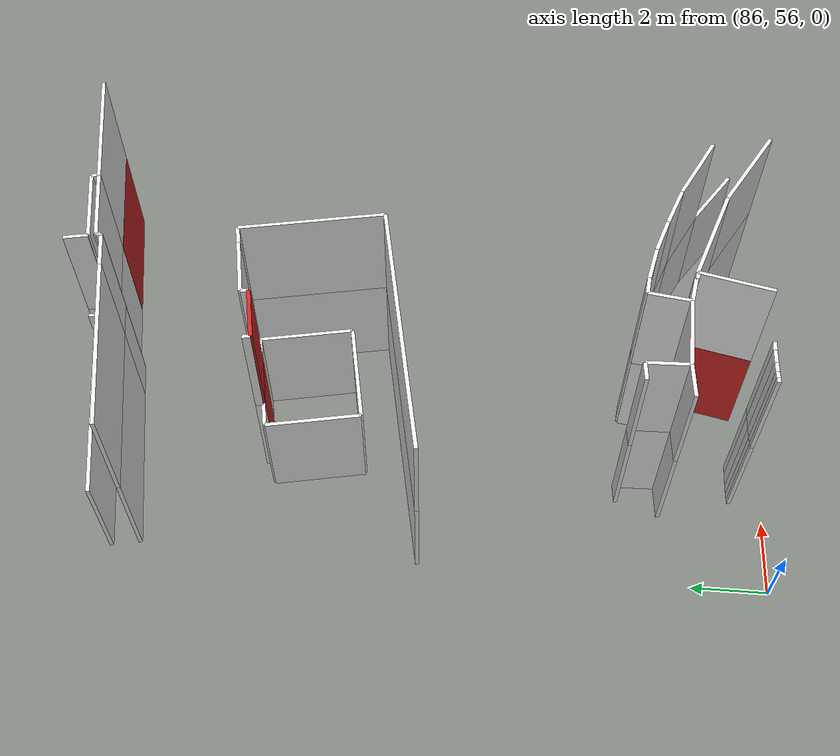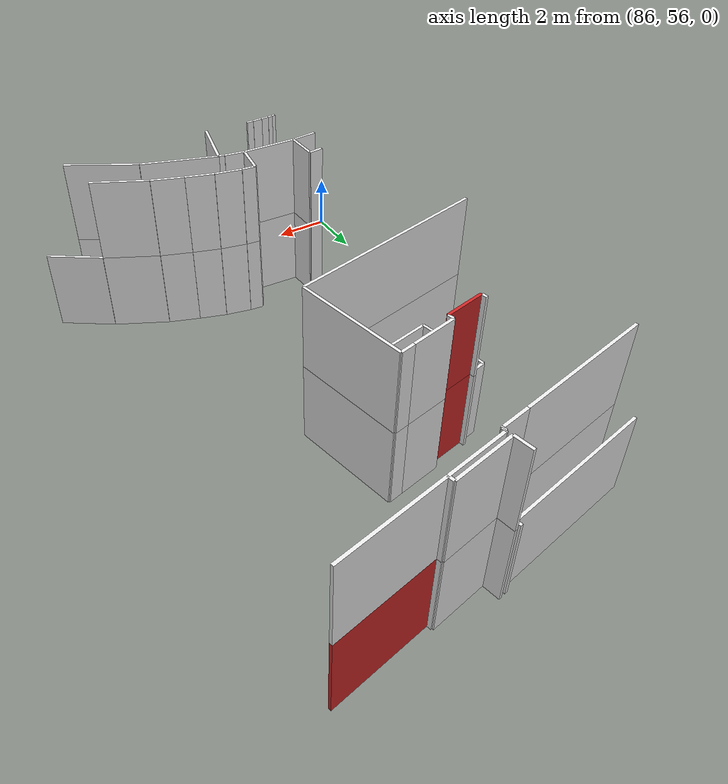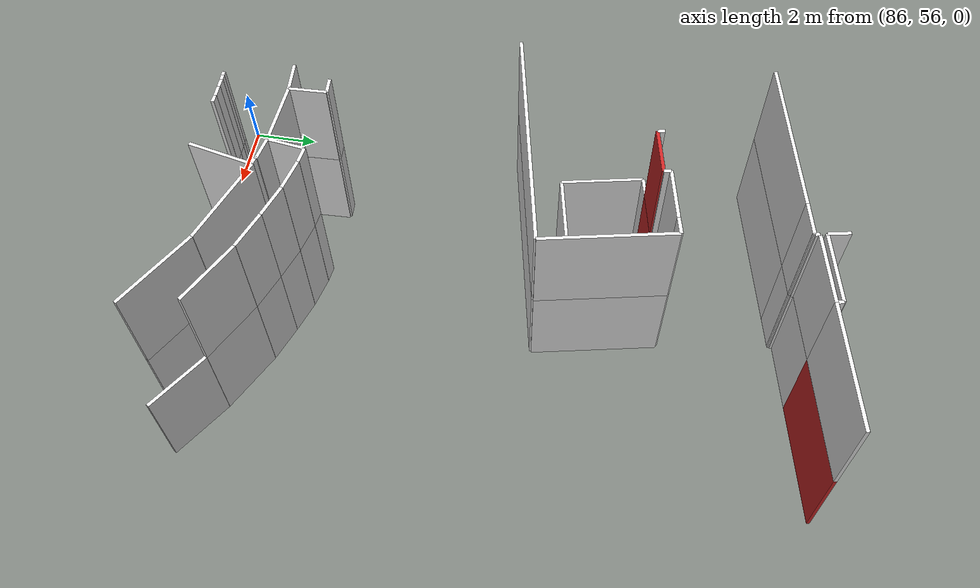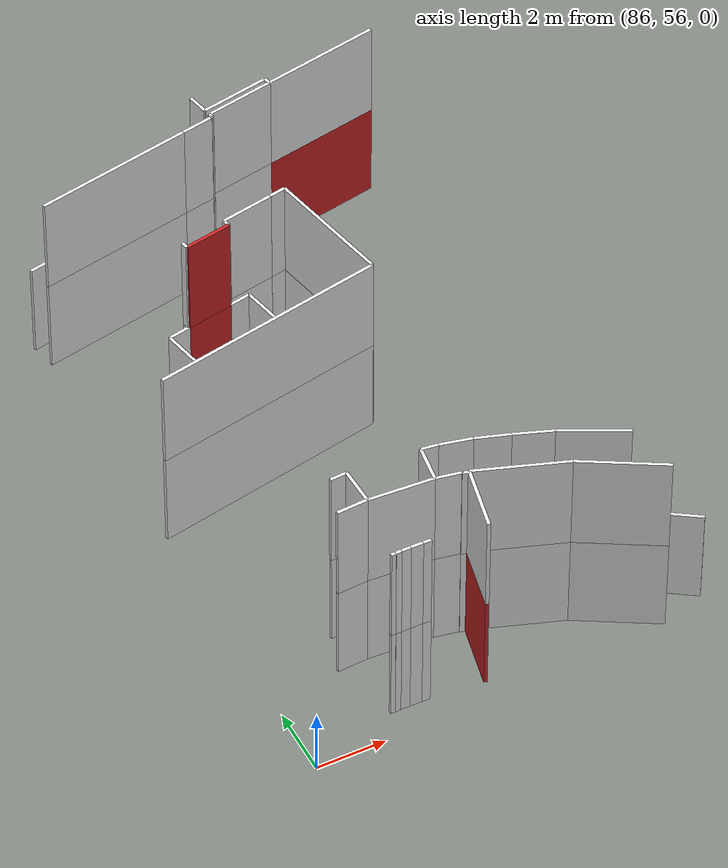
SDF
<sdf version="1.6">
 <world name="default">
  <model name="wall_91.5_57.6_1.5">
   <static>true</static>
   <pose>91.49500000002445 57.58999999985099 1.5 0 0 -1.795651920405678</pose>
   <link name="link">
    <visual name="visual">
     <geometry><box><size>1.9285486770039746 0.1 3</size></box></geometry>
     <material>
      <script><uri>file://media/materials/scripts/gazebo.material</uri><name>Gazebo/Red</name></script>
     </material>
    </visual>
    <collision name="collision"><geometry><box><size>1.9285486770039746 0.1 3</size></box></geometry></collision>
   </link>
  </model>
  <model name="wall_89.6_69.5_1.5">
   <static>true</static>
   <pose>89.59500000000116 69.4749999998603 1.5 0 0 0.19458657847950467</pose>
   <link name="link">
    <visual name="visual">
     <geometry><box><size>1.396352391109346 0.1 3</size></box></geometry>
     <material>
      <script><uri>file://media/materials/scripts/gazebo.material</uri><name>Gazebo/Red</name></script>
     </material>
    </visual>
    <collision name="collision"><geometry><box><size>1.396352391109346 0.1 3</size></box></geometry></collision>
   </link>
  </model>
  <model name="wall_95.5_74.5_1.5">
   <static>true</static>
   <pose>95.51500000001397 74.51000000000931 1.5 0 0 0.19351316121262999</pose>
   <link name="link">
    <visual name="visual">
     <geometry><box><size>3.5360005656156344 0.1 3</size></box></geometry>
     <material>
      <script><uri>file://media/materials/scripts/gazebo.material</uri><name>Gazebo/Red</name></script>
     </material>
    </visual>
    <collision name="collision"><geometry><box><size>3.5360005656156344 0.1 3</size></box></geometry></collision>
   </link>
  </model>
  <model name="wall_89.6_69.5_4.5">
   <static>true</static>
   <pose>89.59500000000116 69.4749999998603 4.5 0 0 0.19458657847950467</pose>
   <link name="link">
    <visual name="visual">
     <geometry><box><size>1.396352391109346 0.1 3</size></box></geometry>
     <material>
      <script><uri>file://media/materials/scripts/gazebo.material</uri><name>Gazebo/Red</name></script>
     </material>
    </visual>
    <collision name="collision"><geometry><box><size>1.396352391109346 0.1 3</size></box></geometry></collision>
   </link>
  </model>
  <model name="wall_91.6_58.6_1.5">
   <static>true</static>
   <pose>91.61000000001513 58.55499999993481 1.5 0 0 2.896613989161817</pose>
   <link name="link">
    <visual name="visual">
     <geometry><box><size>0.20615528135994066 0.1 3</size></box></geometry>
     <material>
      <script><uri>file://media/materials/scripts/gazebo.material</uri><name>Gazebo/White</name></script>
     </material>
    </visual>
    <collision name="collision"><geometry><box><size>0.20615528135994066 0.1 3</size></box></geometry></collision>
   </link>
  </model>
  <model name="wall_91.5_58.6_1.5">
   <static>true</static>
   <pose>91.51500000001397 58.59000000008382 1.5 0 0 1.1071487177940904</pose>
   <link name="link">
    <visual name="visual">
     <geometry><box><size>0.022360679795822902 0.1 3</size></box></geometry>
     <material>
      <script><uri>file://media/materials/scripts/gazebo.material</uri><name>Gazebo/White</name></script>
     </material>
    </visual>
    <collision name="collision">
     <geometry><box><size>0.022360679795822902 0.1 3</size></box></geometry>
    </collision>
   </link>
  </model>
  <model name="wall_91.2_58.7_1.5">
   <static>true</static>
   <pose>91.16500000000815 58.66500000003725 1.5 0 0 2.960499997216104</pose>
   <link name="link">
    <visual name="visual">
     <geometry><box><size>0.7218032973052274 0.1 3</size></box></geometry>
     <material>
      <script><uri>file://media/materials/scripts/gazebo.material</uri><name>Gazebo/White</name></script>
     </material>
    </visual>
    <collision name="collision"><geometry><box><size>0.7218032973052274 0.1 3</size></box></geometry></collision>
   </link>
  </model>
  <model name="wall_89.9_58.8_1.5">
   <static>true</static>
   <pose>89.85999999998603 58.78499999991618 1.5 0 0 3.083762470913302</pose>
   <link name="link">
    <visual name="visual">
     <geometry><box><size>1.90318154679468 0.1 3</size></box></geometry>
     <material>
      <script><uri>file://media/materials/scripts/gazebo.material</uri><name>Gazebo/White</name></script>
     </material>
    </visual>
    <collision name="collision"><geometry><box><size>1.90318154679468 0.1 3</size></box></geometry></collision>
   </link>
  </model>
  <model name="wall_88.5_58.8_1.5">
   <static>true</static>
   <pose>88.45999999999185 58.80999999982305 1.5 0 0 -3.0750244897495804</pose>
   <link name="link">
    <visual name="visual">
     <geometry><box><size>0.9019977826712443 0.1 3</size></box></geometry>
     <material>
      <script><uri>file://media/materials/scripts/gazebo.material</uri><name>Gazebo/White</name></script>
     </material>
    </visual>
    <collision name="collision"><geometry><box><size>0.9019977826712443 0.1 3</size></box></geometry></collision>
   </link>
  </model>
  <model name="wall_88.6_56.8_1.5">
   <static>true</static>
   <pose>88.625 56.83999999985099 1.5 0 0 0.0</pose>
   <link name="link">
    <visual name="visual">
     <geometry><box><size>0.1300000000046566 0.1 3</size></box></geometry>
     <material>
      <script><uri>file://media/materials/scripts/gazebo.material</uri><name>Gazebo/White</name></script>
     </material>
    </visual>
    <collision name="collision"><geometry><box><size>0.1300000000046566 0.1 3</size></box></geometry></collision>
   </link>
  </model>
  <model name="wall_88.8_56.8_1.5">
   <static>true</static>
   <pose>88.77499999999418 56.84499999997206 1.5 0 0 0.0587558241408068</pose>
   <link name="link">
    <visual name="visual">
     <geometry><box><size>0.17029386365721316 0.1 3</size></box></geometry>
     <material>
      <script><uri>file://media/materials/scripts/gazebo.material</uri><name>Gazebo/White</name></script>
     </material>
    </visual>
    <collision name="collision"><geometry><box><size>0.17029386365721316 0.1 3</size></box></geometry></collision>
   </link>
  </model>
  <model name="wall_89.0_56.9_1.5">
   <static>true</static>
   <pose>88.99499999999534 56.85000000009313 1.5 0 0 0.0</pose>
   <link name="link">
    <visual name="visual">
     <geometry><box><size>0.27000000001862645 0.1 3</size></box></geometry>
     <material>
      <script><uri>file://media/materials/scripts/gazebo.material</uri><name>Gazebo/White</name></script>
     </material>
    </visual>
    <collision name="collision"><geometry><box><size>0.27000000001862645 0.1 3</size></box></geometry></collision>
   </link>
  </model>
  <model name="wall_89.3_56.9_1.5">
   <static>true</static>
   <pose>89.30499999999302 56.85000000009313 1.5 0 0 0.0</pose>
   <link name="link">
    <visual name="visual">
     <geometry><box><size>0.34999999997671694 0.1 3</size></box></geometry>
     <material>
      <script><uri>file://media/materials/scripts/gazebo.material</uri><name>Gazebo/White</name></script>
     </material>
    </visual>
    <collision name="collision"><geometry><box><size>0.34999999997671694 0.1 3</size></box></geometry></collision>
   </link>
  </model>
  <model name="wall_89.6_56.8_1.5">
   <static>true</static>
   <pose>89.59999999997672 56.84499999997206 1.5 0 0 -0.04164258010738671</pose>
   <link name="link">
    <visual name="visual">
     <geometry><box><size>0.24020824299006172 0.1 3</size></box></geometry>
     <material>
      <script><uri>file://media/materials/scripts/gazebo.material</uri><name>Gazebo/White</name></script>
     </material>
    </visual>
    <collision name="collision"><geometry><box><size>0.24020824299006172 0.1 3</size></box></geometry></collision>
   </link>
  </model>
  <model name="wall_91.7_58.5_1.5">
   <static>true</static>
   <pose>91.71000000002095 58.544999999925494 1.5 0 0 1.5707963267948966</pose>
   <link name="link">
    <visual name="visual">
     <geometry><box><size>0.03000000026077032 0.1 3</size></box></geometry>
     <material>
      <script><uri>file://media/materials/scripts/gazebo.material</uri><name>Gazebo/White</name></script>
     </material>
    </visual>
    <collision name="collision"><geometry><box><size>0.03000000026077032 0.1 3</size></box></geometry></collision>
   </link>
  </model>
  <model name="wall_93.0_58.1_1.5">
   <static>true</static>
   <pose>92.99000000001979 58.10499999998137 1.5 0 0 -0.34153842534850654</pose>
   <link name="link">
    <visual name="visual">
     <geometry><box><size>2.7169284127962 0.1 3</size></box></geometry>
     <material>
      <script><uri>file://media/materials/scripts/gazebo.material</uri><name>Gazebo/White</name></script>
     </material>
    </visual>
    <collision name="collision"><geometry><box><size>2.7169284127962 0.1 3</size></box></geometry></collision>
   </link>
  </model>
  <model name="wall_95.4_57.0_1.5">
   <static>true</static>
   <pose>95.38500000000931 57.00499999988824 1.5 0 0 -0.5244421648917321</pose>
   <link name="link">
    <visual name="visual">
     <geometry><box><size>2.576237566687715 0.1 3</size></box></geometry>
     <material>
      <script><uri>file://media/materials/scripts/gazebo.material</uri><name>Gazebo/White</name></script>
     </material>
    </visual>
    <collision name="collision"><geometry><box><size>2.576237566687715 0.1 3</size></box></geometry></collision>
   </link>
  </model>
  <model name="wall_88.7_73.8_1.5">
   <static>true</static>
   <pose>88.7050000000163 73.80000000004657 1.5 0 0 0.1955976473787338</pose>
   <link name="link">
    <visual name="visual">
     <geometry><box><size>5.4539985331744765 0.1 3</size></box></geometry>
     <material>
      <script><uri>file://media/materials/scripts/gazebo.material</uri><name>Gazebo/White</name></script>
     </material>
    </visual>
    <collision name="collision"><geometry><box><size>5.4539985331744765 0.1 3</size></box></geometry></collision>
   </link>
  </model>
  <model name="wall_91.4_74.4_1.5">
   <static>true</static>
   <pose>91.36499999999069 74.42999999993481 1.5 0 0 1.7196862747459547</pose>
   <link name="link">
    <visual name="visual">
     <geometry><box><size>0.2022374838894058 0.1 3</size></box></geometry>
     <material>
      <script><uri>file://media/materials/scripts/gazebo.material</uri><name>Gazebo/White</name></script>
     </material>
    </visual>
    <collision name="collision"><geometry><box><size>0.2022374838894058 0.1 3</size></box></geometry></collision>
   </link>
  </model>
  <model name="wall_88.5_68.0_1.5">
   <static>true</static>
   <pose>88.51000000000931 67.99499999987893 1.5 0 0 -1.3757760594104678</pose>
   <link name="link">
    <visual name="visual">
     <geometry><box><size>2.4769537744570123 0.1 3</size></box></geometry>
     <material>
      <script><uri>file://media/materials/scripts/gazebo.material</uri><name>Gazebo/White</name></script>
     </material>
    </visual>
    <collision name="collision"><geometry><box><size>2.4769537744570123 0.1 3</size></box></geometry></collision>
   </link>
  </model>
  <model name="wall_90.1_67.0_1.5">
   <static>true</static>
   <pose>90.0799999999872 67.03999999980442 1.5 0 0 0.19305405312718568</pose>
   <link name="link">
    <visual name="visual">
     <geometry><box><size>2.710350530813887 0.1 3</size></box></geometry>
     <material>
      <script><uri>file://media/materials/scripts/gazebo.material</uri><name>Gazebo/White</name></script>
     </material>
    </visual>
    <collision name="collision"><geometry><box><size>2.710350530813887 0.1 3</size></box></geometry></collision>
   </link>
  </model>
  <model name="wall_91.2_68.5_1.5">
   <static>true</static>
   <pose>91.16499999997905 68.52000000001863 1.5 0 0 1.7689799085101925</pose>
   <link name="link">
    <visual name="visual">
     <geometry><box><size>2.4887145280225713 0.1 3</size></box></geometry>
     <material>
      <script><uri>file://media/materials/scripts/gazebo.material</uri><name>Gazebo/White</name></script>
     </material>
    </visual>
    <collision name="collision"><geometry><box><size>2.4887145280225713 0.1 3</size></box></geometry></collision>
   </link>
  </model>
  <model name="wall_90.6_69.7_1.5">
   <static>true</static>
   <pose>90.60000000000582 69.67500000004657 1.5 0 0 -2.9411940992193695</pose>
   <link name="link">
    <visual name="visual">
     <geometry><box><size>0.6530696747173231 0.1 3</size></box></geometry>
     <material>
      <script><uri>file://media/materials/scripts/gazebo.material</uri><name>Gazebo/White</name></script>
     </material>
    </visual>
    <collision name="collision"><geometry><box><size>0.6530696747173231 0.1 3</size></box></geometry></collision>
   </link>
  </model>
  <model name="wall_88.6_69.3_1.5">
   <static>true</static>
   <pose>88.58999999999651 69.27499999990687 1.5 0 0 -2.9411940999181345</pose>
   <link name="link">
    <visual name="visual">
     <geometry><box><size>0.6530696746246286 0.1 3</size></box></geometry>
     <material>
      <script><uri>file://media/materials/scripts/gazebo.material</uri><name>Gazebo/White</name></script>
     </material>
    </visual>
    <collision name="collision"><geometry><box><size>0.6530696746246286 0.1 3</size></box></geometry></collision>
   </link>
  </model>
  <model name="wall_97.0_57.4_1.5">
   <static>true</static>
   <pose>97.0 57.36499999999069 1.5 0 0 2.552201162109747</pose>
   <link name="link">
    <visual name="visual">
     <geometry><box><size>1.9969226324068652 0.1 3</size></box></geometry>
     <material>
      <script><uri>file://media/materials/scripts/gazebo.material</uri><name>Gazebo/White</name></script>
     </material>
    </visual>
    <collision name="collision"><geometry><box><size>1.9969226324068652 0.1 3</size></box></geometry></collision>
   </link>
  </model>
  <model name="wall_95.3_58.4_1.5">
   <static>true</static>
   <pose>95.27999999999884 58.375 1.5 0 0 2.668996737498951</pose>
   <link name="link">
    <visual name="visual">
     <geometry><box><size>1.9991248085508437 0.1 3</size></box></geometry>
     <material>
      <script><uri>file://media/materials/scripts/gazebo.material</uri><name>Gazebo/White</name></script>
     </material>
    </visual>
    <collision name="collision"><geometry><box><size>1.9991248085508437 0.1 3</size></box></geometry></collision>
   </link>
  </model>
  <model name="wall_93.9_59.0_1.5">
   <static>true</static>
   <pose>93.85500000001048 59.03000000002794 1.5 0 0 2.783846573203131</pose>
   <link name="link">
    <visual name="visual">
     <geometry><box><size>1.142322196204049 0.1 3</size></box></geometry>
     <material>
      <script><uri>file://media/materials/scripts/gazebo.material</uri><name>Gazebo/White</name></script>
     </material>
    </visual>
    <collision name="collision"><geometry><box><size>1.142322196204049 0.1 3</size></box></geometry></collision>
   </link>
  </model>
  <model name="wall_92.8_59.4_1.5">
   <static>true</static>
   <pose>92.84500000000116 59.389999999897555 1.5 0 0 2.816687535686861</pose>
   <link name="link">
    <visual name="visual">
     <geometry><box><size>1.0024470060381399 0.1 3</size></box></geometry>
     <material>
      <script><uri>file://media/materials/scripts/gazebo.material</uri><name>Gazebo/White</name></script>
     </material>
    </visual>
    <collision name="collision"><geometry><box><size>1.0024470060381399 0.1 3</size></box></geometry></collision>
   </link>
  </model>
  <model name="wall_91.9_59.7_1.5">
   <static>true</static>
   <pose>91.91000000000349 59.65499999979511 1.5 0 0 2.917176644587291</pose>
   <link name="link">
    <visual name="visual">
     <geometry><box><size>0.9436630754429067 0.1 3</size></box></geometry>
     <material>
      <script><uri>file://media/materials/scripts/gazebo.material</uri><name>Gazebo/White</name></script>
     </material>
    </visual>
    <collision name="collision"><geometry><box><size>0.9436630754429067 0.1 3</size></box></geometry></collision>
   </link>
  </model>
  <model name="wall_91.2_59.8_1.5">
   <static>true</static>
   <pose>91.20999999999185 59.78999999980442 1.5 0 0 3.0172376589385563</pose>
   <link name="link">
    <visual name="visual">
     <geometry><box><size>0.4837354649441195 0.1 3</size></box></geometry>
     <material>
      <script><uri>file://media/materials/scripts/gazebo.material</uri><name>Gazebo/White</name></script>
     </material>
    </visual>
    <collision name="collision"><geometry><box><size>0.4837354649441195 0.1 3</size></box></geometry></collision>
   </link>
  </model>
  <model name="wall_90.9_59.3_1.5">
   <static>true</static>
   <pose>90.88999999998487 59.27499999990687 1.5 0 0 -1.7165444534999768</pose>
   <link name="link">
    <visual name="visual">
     <geometry><box><size>1.1016805343051854 0.1 3</size></box></geometry>
     <material>
      <script><uri>file://media/materials/scripts/gazebo.material</uri><name>Gazebo/White</name></script>
     </material>
    </visual>
    <collision name="collision"><geometry><box><size>1.1016805343051854 0.1 3</size></box></geometry></collision>
   </link>
  </model>
  <model name="wall_88.9_59.4_1.5">
   <static>true</static>
   <pose>88.89499999998952 59.389999999897555 1.5 0 0 1.5980622952206878</pose>
   <link name="link">
    <visual name="visual">
     <geometry><box><size>1.1004090149590173 0.1 3</size></box></geometry>
     <material>
      <script><uri>file://media/materials/scripts/gazebo.material</uri><name>Gazebo/White</name></script>
     </material>
    </visual>
    <collision name="collision"><geometry><box><size>1.1004090149590173 0.1 3</size></box></geometry></collision>
   </link>
  </model>
  <model name="wall_88.6_59.9_1.5">
   <static>true</static>
   <pose>88.63500000000931 59.925000000046566 1.5 0 0 -3.080444491355916</pose>
   <link name="link">
    <visual name="visual">
     <geometry><box><size>0.4909175083235264 0.1 3</size></box></geometry>
     <material>
      <script><uri>file://media/materials/scripts/gazebo.material</uri><name>Gazebo/White</name></script>
     </material>
    </visual>
    <collision name="collision"><geometry><box><size>0.4909175083235264 0.1 3</size></box></geometry></collision>
   </link>
  </model>
  <model name="wall_89.6_65.8_1.5">
   <static>true</static>
   <pose>89.55999999999767 65.81000000005588 1.5 0 0 0.19515842716344076</pose>
   <link name="link">
    <visual name="visual">
     <geometry><box><size>7.013130542131383 0.1 3</size></box></geometry>
     <material>
      <script><uri>file://media/materials/scripts/gazebo.material</uri><name>Gazebo/White</name></script>
     </material>
    </visual>
    <collision name="collision"><geometry><box><size>7.013130542131383 0.1 3</size></box></geometry></collision>
   </link>
  </model>
  <model name="wall_92.6_68.4_1.5">
   <static>true</static>
   <pose>92.63000000000466 68.35000000009313 1.5 0 0 1.767157760861028</pose>
   <link name="link">
    <visual name="visual">
     <geometry><box><size>3.7928880814026247 0.1 3</size></box></geometry>
     <material>
      <script><uri>file://media/materials/scripts/gazebo.material</uri><name>Gazebo/White</name></script>
     </material>
    </visual>
    <collision name="collision"><geometry><box><size>3.7928880814026247 0.1 3</size></box></geometry></collision>
   </link>
  </model>
  <model name="wall_92.0_70.2_1.5">
   <static>true</static>
   <pose>92.01500000001397 70.15999999991618 1.5 0 0 -2.9402755450289626</pose>
   <link name="link">
    <visual name="visual">
     <geometry><box><size>0.5000999900114971 0.1 3</size></box></geometry>
     <material>
      <script><uri>file://media/materials/scripts/gazebo.material</uri><name>Gazebo/White</name></script>
     </material>
    </visual>
    <collision name="collision"><geometry><box><size>0.5000999900114971 0.1 3</size></box></geometry></collision>
   </link>
  </model>
  <model name="wall_91.0_70.0_1.5">
   <static>true</static>
   <pose>91.00500000000466 69.95999999996275 1.5 0 0 -2.94797066085453</pose>
   <link name="link">
    <visual name="visual">
     <geometry><box><size>1.5591343752139315 0.1 3</size></box></geometry>
     <material>
      <script><uri>file://media/materials/scripts/gazebo.material</uri><name>Gazebo/White</name></script>
     </material>
    </visual>
    <collision name="collision"><geometry><box><size>1.5591343752139315 0.1 3</size></box></geometry></collision>
   </link>
  </model>
  <model name="wall_90.3_69.7_1.5">
   <static>true</static>
   <pose>90.26000000000931 69.70999999996275 1.5 0 0 -1.373400766945016</pose>
   <link name="link">
    <visual name="visual">
     <geometry><box><size>0.20396078073366466 0.1 3</size></box></geometry>
     <material>
      <script><uri>file://media/materials/scripts/gazebo.material</uri><name>Gazebo/White</name></script>
     </material>
    </visual>
    <collision name="collision"><geometry><box><size>0.20396078073366466 0.1 3</size></box></geometry></collision>
   </link>
  </model>
  <model name="wall_88.9_69.4_1.5">
   <static>true</static>
   <pose>88.88999999998487 69.43999999994412 1.5 0 0 1.7681918863649329</pose>
   <link name="link">
    <visual name="visual">
     <geometry><box><size>0.2039607807222492 0.1 3</size></box></geometry>
     <material>
      <script><uri>file://media/materials/scripts/gazebo.material</uri><name>Gazebo/White</name></script>
     </material>
    </visual>
    <collision name="collision"><geometry><box><size>0.2039607807222492 0.1 3</size></box></geometry></collision>
   </link>
  </model>
  <model name="wall_88.5_73.0_1.5">
   <static>true</static>
   <pose>88.48999999999069 72.98999999999069 1.5 0 0 0.19656292065681916</pose>
   <link name="link">
    <visual name="visual">
     <geometry><box><size>4.710711199031065 0.1 3</size></box></geometry>
     <material>
      <script><uri>file://media/materials/scripts/gazebo.material</uri><name>Gazebo/White</name></script>
     </material>
    </visual>
    <collision name="collision"><geometry><box><size>4.710711199031065 0.1 3</size></box></geometry></collision>
   </link>
  </model>
  <model name="wall_91.3_73.5_1.5">
   <static>true</static>
   <pose>91.26499999998487 73.54000000003725 1.5 0 0 0.19118445928953165</pose>
   <link name="link">
    <visual name="visual">
     <geometry><box><size>0.9472592041673281 0.1 3</size></box></geometry>
     <material>
      <script><uri>file://media/materials/scripts/gazebo.material</uri><name>Gazebo/White</name></script>
     </material>
    </visual>
    <collision name="collision"><geometry><box><size>0.9472592041673281 0.1 3</size></box></geometry></collision>
   </link>
  </model>
  <model name="wall_91.8_73.6_1.5">
   <static>true</static>
   <pose>91.75500000000466 73.63999999989755 1.5 0 0 0.3805063771123649</pose>
   <link name="link">
    <visual name="visual">
     <geometry><box><size>0.0538516481214983 0.1 3</size></box></geometry>
     <material>
      <script><uri>file://media/materials/scripts/gazebo.material</uri><name>Gazebo/White</name></script>
     </material>
    </visual>
    <collision name="collision"><geometry><box><size>0.0538516481214983 0.1 3</size></box></geometry></collision>
   </link>
  </model>
  <model name="wall_91.8_73.7_1.5">
   <static>true</static>
   <pose>91.76500000001397 73.70999999996275 1.5 0 0 1.8157749899217608</pose>
   <link name="link">
    <visual name="visual">
     <geometry><box><size>0.12369316888372806 0.1 3</size></box></geometry>
     <material>
      <script><uri>file://media/materials/scripts/gazebo.material</uri><name>Gazebo/White</name></script>
     </material>
    </visual>
    <collision name="collision"><geometry><box><size>0.12369316888372806 0.1 3</size></box></geometry></collision>
   </link>
  </model>
  <model name="wall_91.8_73.8_1.5">
   <static>true</static>
   <pose>91.77499999999418 73.77499999990687 1.5 0 0 0.197395555596244</pose>
   <link name="link">
    <visual name="visual">
     <geometry><box><size>0.050990195080677016 0.1 3</size></box></geometry>
     <material>
      <script><uri>file://media/materials/scripts/gazebo.material</uri><name>Gazebo/White</name></script>
     </material>
    </visual>
    <collision name="collision">
     <geometry><box><size>0.050990195080677016 0.1 3</size></box></geometry>
    </collision>
   </link>
  </model>
  <model name="wall_92.8_74.0_1.5">
   <static>true</static>
   <pose>92.79000000000815 73.9749999998603 1.5 0 0 0.19448011627470685</pose>
   <link name="link">
    <visual name="visual">
     <geometry><box><size>2.0180436071250893 0.1 3</size></box></geometry>
     <material>
      <script><uri>file://media/materials/scripts/gazebo.material</uri><name>Gazebo/White</name></script>
     </material>
    </visual>
    <collision name="collision"><geometry><box><size>2.0180436071250893 0.1 3</size></box></geometry></collision>
   </link>
  </model>
  <model name="wall_93.8_74.3_1.5">
   <static>true</static>
   <pose>93.76000000000931 74.26499999989755 1.5 0 0 1.7782925534771346</pose>
   <link name="link">
    <visual name="visual">
     <geometry><box><size>0.19416487834246976 0.1 3</size></box></geometry>
     <material>
      <script><uri>file://media/materials/scripts/gazebo.material</uri><name>Gazebo/White</name></script>
     </material>
    </visual>
    <collision name="collision"><geometry><box><size>0.19416487834246976 0.1 3</size></box></geometry></collision>
   </link>
  </model>
  <model name="wall_92.7_74.2_1.5">
   <static>true</static>
   <pose>92.72500000000582 74.15999999991618 1.5 0 0 -2.947040688012496</pose>
   <link name="link">
    <visual name="visual">
     <geometry><box><size>2.0690335907864346 0.1 3</size></box></geometry>
     <material>
      <script><uri>file://media/materials/scripts/gazebo.material</uri><name>Gazebo/White</name></script>
     </material>
    </visual>
    <collision name="collision"><geometry><box><size>2.0690335907864346 0.1 3</size></box></geometry></collision>
   </link>
  </model>
  <model name="wall_91.7_74.3_1.5">
   <static>true</static>
   <pose>91.65000000002328 74.27000000001863 1.5 0 0 1.761980786351043</pose>
   <link name="link">
    <visual name="visual">
     <geometry><box><size>0.6315061362627153 0.1 3</size></box></geometry>
     <material>
      <script><uri>file://media/materials/scripts/gazebo.material</uri><name>Gazebo/White</name></script>
     </material>
    </visual>
    <collision name="collision"><geometry><box><size>0.6315061362627153 0.1 3</size></box></geometry></collision>
   </link>
  </model>
  <model name="wall_91.5_57.6_4.5">
   <static>true</static>
   <pose>91.49500000002445 57.58999999985099 4.5 0 0 1.3459407331841153</pose>
   <link name="link">
    <visual name="visual">
     <geometry><box><size>1.9285486770039746 0.1 3</size></box></geometry>
     <material>
      <script><uri>file://media/materials/scripts/gazebo.material</uri><name>Gazebo/White</name></script>
     </material>
    </visual>
    <collision name="collision"><geometry><box><size>1.9285486770039746 0.1 3</size></box></geometry></collision>
   </link>
  </model>
  <model name="wall_91.6_58.6_4.5">
   <static>true</static>
   <pose>91.61000000001513 58.55499999993481 4.5 0 0 2.896613989161817</pose>
   <link name="link">
    <visual name="visual">
     <geometry><box><size>0.20615528135994066 0.1 3</size></box></geometry>
     <material>
      <script><uri>file://media/materials/scripts/gazebo.material</uri><name>Gazebo/White</name></script>
     </material>
    </visual>
    <collision name="collision"><geometry><box><size>0.20615528135994066 0.1 3</size></box></geometry></collision>
   </link>
  </model>
  <model name="wall_91.5_58.6_4.5">
   <static>true</static>
   <pose>91.51500000001397 58.59000000008382 4.5 0 0 1.1071487177940904</pose>
   <link name="link">
    <visual name="visual">
     <geometry><box><size>0.022360679795822902 0.1 3</size></box></geometry>
     <material>
      <script><uri>file://media/materials/scripts/gazebo.material</uri><name>Gazebo/White</name></script>
     </material>
    </visual>
    <collision name="collision">
     <geometry><box><size>0.022360679795822902 0.1 3</size></box></geometry>
    </collision>
   </link>
  </model>
  <model name="wall_91.2_58.7_4.5">
   <static>true</static>
   <pose>91.16500000000815 58.66500000003725 4.5 0 0 2.960499997216104</pose>
   <link name="link">
    <visual name="visual">
     <geometry><box><size>0.7218032973052274 0.1 3</size></box></geometry>
     <material>
      <script><uri>file://media/materials/scripts/gazebo.material</uri><name>Gazebo/White</name></script>
     </material>
    </visual>
    <collision name="collision"><geometry><box><size>0.7218032973052274 0.1 3</size></box></geometry></collision>
   </link>
  </model>
  <model name="wall_89.9_58.8_4.5">
   <static>true</static>
   <pose>89.85999999998603 58.78499999991618 4.5 0 0 3.083762470913302</pose>
   <link name="link">
    <visual name="visual">
     <geometry><box><size>1.90318154679468 0.1 3</size></box></geometry>
     <material>
      <script><uri>file://media/materials/scripts/gazebo.material</uri><name>Gazebo/White</name></script>
     </material>
    </visual>
    <collision name="collision"><geometry><box><size>1.90318154679468 0.1 3</size></box></geometry></collision>
   </link>
  </model>
  <model name="wall_88.5_58.8_4.5">
   <static>true</static>
   <pose>88.45999999999185 58.80999999982305 4.5 0 0 -3.0750244897495804</pose>
   <link name="link">
    <visual name="visual">
     <geometry><box><size>0.9019977826712443 0.1 3</size></box></geometry>
     <material>
      <script><uri>file://media/materials/scripts/gazebo.material</uri><name>Gazebo/White</name></script>
     </material>
    </visual>
    <collision name="collision"><geometry><box><size>0.9019977826712443 0.1 3</size></box></geometry></collision>
   </link>
  </model>
  <model name="wall_88.6_56.8_4.5">
   <static>true</static>
   <pose>88.625 56.83999999985099 4.5 0 0 0.0</pose>
   <link name="link">
    <visual name="visual">
     <geometry><box><size>0.1300000000046566 0.1 3</size></box></geometry>
     <material>
      <script><uri>file://media/materials/scripts/gazebo.material</uri><name>Gazebo/White</name></script>
     </material>
    </visual>
    <collision name="collision"><geometry><box><size>0.1300000000046566 0.1 3</size></box></geometry></collision>
   </link>
  </model>
  <model name="wall_88.8_56.8_4.5">
   <static>true</static>
   <pose>88.77499999999418 56.84499999997206 4.5 0 0 0.0587558241408068</pose>
   <link name="link">
    <visual name="visual">
     <geometry><box><size>0.17029386365721316 0.1 3</size></box></geometry>
     <material>
      <script><uri>file://media/materials/scripts/gazebo.material</uri><name>Gazebo/White</name></script>
     </material>
    </visual>
    <collision name="collision"><geometry><box><size>0.17029386365721316 0.1 3</size></box></geometry></collision>
   </link>
  </model>
  <model name="wall_89.0_56.9_4.5">
   <static>true</static>
   <pose>88.99499999999534 56.85000000009313 4.5 0 0 0.0</pose>
   <link name="link">
    <visual name="visual">
     <geometry><box><size>0.27000000001862645 0.1 3</size></box></geometry>
     <material>
      <script><uri>file://media/materials/scripts/gazebo.material</uri><name>Gazebo/White</name></script>
     </material>
    </visual>
    <collision name="collision"><geometry><box><size>0.27000000001862645 0.1 3</size></box></geometry></collision>
   </link>
  </model>
  <model name="wall_89.3_56.9_4.5">
   <static>true</static>
   <pose>89.30499999999302 56.85000000009313 4.5 0 0 0.0</pose>
   <link name="link">
    <visual name="visual">
     <geometry><box><size>0.34999999997671694 0.1 3</size></box></geometry>
     <material>
      <script><uri>file://media/materials/scripts/gazebo.material</uri><name>Gazebo/White</name></script>
     </material>
    </visual>
    <collision name="collision"><geometry><box><size>0.34999999997671694 0.1 3</size></box></geometry></collision>
   </link>
  </model>
  <model name="wall_89.6_56.8_4.5">
   <static>true</static>
   <pose>89.59999999997672 56.84499999997206 4.5 0 0 -0.04164258010738671</pose>
   <link name="link">
    <visual name="visual">
     <geometry><box><size>0.24020824299006172 0.1 3</size></box></geometry>
     <material>
      <script><uri>file://media/materials/scripts/gazebo.material</uri><name>Gazebo/White</name></script>
     </material>
    </visual>
    <collision name="collision"><geometry><box><size>0.24020824299006172 0.1 3</size></box></geometry></collision>
   </link>
  </model>
  <model name="wall_91.7_58.5_4.5">
   <static>true</static>
   <pose>91.71000000002095 58.544999999925494 4.5 0 0 1.5707963267948966</pose>
   <link name="link">
    <visual name="visual">
     <geometry><box><size>0.03000000026077032 0.1 3</size></box></geometry>
     <material>
      <script><uri>file://media/materials/scripts/gazebo.material</uri><name>Gazebo/White</name></script>
     </material>
    </visual>
    <collision name="collision"><geometry><box><size>0.03000000026077032 0.1 3</size></box></geometry></collision>
   </link>
  </model>
  <model name="wall_93.0_58.1_4.5">
   <static>true</static>
   <pose>92.99000000001979 58.10499999998137 4.5 0 0 -0.34153842534850654</pose>
   <link name="link">
    <visual name="visual">
     <geometry><box><size>2.7169284127962 0.1 3</size></box></geometry>
     <material>
      <script><uri>file://media/materials/scripts/gazebo.material</uri><name>Gazebo/White</name></script>
     </material>
    </visual>
    <collision name="collision"><geometry><box><size>2.7169284127962 0.1 3</size></box></geometry></collision>
   </link>
  </model>
  <model name="wall_95.4_57.0_4.5">
   <static>true</static>
   <pose>95.38500000000931 57.00499999988824 4.5 0 0 -0.5244421648917321</pose>
   <link name="link">
    <visual name="visual">
     <geometry><box><size>2.576237566687715 0.1 3</size></box></geometry>
     <material>
      <script><uri>file://media/materials/scripts/gazebo.material</uri><name>Gazebo/White</name></script>
     </material>
    </visual>
    <collision name="collision"><geometry><box><size>2.576237566687715 0.1 3</size></box></geometry></collision>
   </link>
  </model>
  <model name="wall_95.3_58.4_4.5">
   <static>true</static>
   <pose>95.27999999999884 58.375 4.5 0 0 2.668996737498951</pose>
   <link name="link">
    <visual name="visual">
     <geometry><box><size>1.9991248085508437 0.1 3</size></box></geometry>
     <material>
      <script><uri>file://media/materials/scripts/gazebo.material</uri><name>Gazebo/White</name></script>
     </material>
    </visual>
    <collision name="collision"><geometry><box><size>1.9991248085508437 0.1 3</size></box></geometry></collision>
   </link>
  </model>
  <model name="wall_93.9_59.0_4.5">
   <static>true</static>
   <pose>93.85500000001048 59.03000000002794 4.5 0 0 2.783846573203131</pose>
   <link name="link">
    <visual name="visual">
     <geometry><box><size>1.142322196204049 0.1 3</size></box></geometry>
     <material>
      <script><uri>file://media/materials/scripts/gazebo.material</uri><name>Gazebo/White</name></script>
     </material>
    </visual>
    <collision name="collision"><geometry><box><size>1.142322196204049 0.1 3</size></box></geometry></collision>
   </link>
  </model>
  <model name="wall_92.8_59.4_4.5">
   <static>true</static>
   <pose>92.84500000000116 59.389999999897555 4.5 0 0 2.816687535686861</pose>
   <link name="link">
    <visual name="visual">
     <geometry><box><size>1.0024470060381399 0.1 3</size></box></geometry>
     <material>
      <script><uri>file://media/materials/scripts/gazebo.material</uri><name>Gazebo/White</name></script>
     </material>
    </visual>
    <collision name="collision"><geometry><box><size>1.0024470060381399 0.1 3</size></box></geometry></collision>
   </link>
  </model>
  <model name="wall_91.9_59.7_4.5">
   <static>true</static>
   <pose>91.91000000000349 59.65499999979511 4.5 0 0 2.917176644587291</pose>
   <link name="link">
    <visual name="visual">
     <geometry><box><size>0.9436630754429067 0.1 3</size></box></geometry>
     <material>
      <script><uri>file://media/materials/scripts/gazebo.material</uri><name>Gazebo/White</name></script>
     </material>
    </visual>
    <collision name="collision"><geometry><box><size>0.9436630754429067 0.1 3</size></box></geometry></collision>
   </link>
  </model>
  <model name="wall_91.2_59.8_4.5">
   <static>true</static>
   <pose>91.20999999999185 59.78999999980442 4.5 0 0 3.0172376589385563</pose>
   <link name="link">
    <visual name="visual">
     <geometry><box><size>0.4837354649441195 0.1 3</size></box></geometry>
     <material>
      <script><uri>file://media/materials/scripts/gazebo.material</uri><name>Gazebo/White</name></script>
     </material>
    </visual>
    <collision name="collision"><geometry><box><size>0.4837354649441195 0.1 3</size></box></geometry></collision>
   </link>
  </model>
  <model name="wall_90.9_59.3_4.5">
   <static>true</static>
   <pose>90.88999999998487 59.27499999990687 4.5 0 0 -1.7165444534999768</pose>
   <link name="link">
    <visual name="visual">
     <geometry><box><size>1.1016805343051854 0.1 3</size></box></geometry>
     <material>
      <script><uri>file://media/materials/scripts/gazebo.material</uri><name>Gazebo/White</name></script>
     </material>
    </visual>
    <collision name="collision"><geometry><box><size>1.1016805343051854 0.1 3</size></box></geometry></collision>
   </link>
  </model>
  <model name="wall_88.9_59.4_4.5">
   <static>true</static>
   <pose>88.89499999998952 59.389999999897555 4.5 0 0 1.5980622952206878</pose>
   <link name="link">
    <visual name="visual">
     <geometry><box><size>1.1004090149590173 0.1 3</size></box></geometry>
     <material>
      <script><uri>file://media/materials/scripts/gazebo.material</uri><name>Gazebo/White</name></script>
     </material>
    </visual>
    <collision name="collision"><geometry><box><size>1.1004090149590173 0.1 3</size></box></geometry></collision>
   </link>
  </model>
  <model name="wall_88.6_59.9_4.5">
   <static>true</static>
   <pose>88.63500000000931 59.925000000046566 4.5 0 0 -3.080444491355916</pose>
   <link name="link">
    <visual name="visual">
     <geometry><box><size>0.4909175083235264 0.1 3</size></box></geometry>
     <material>
      <script><uri>file://media/materials/scripts/gazebo.material</uri><name>Gazebo/White</name></script>
     </material>
    </visual>
    <collision name="collision"><geometry><box><size>0.4909175083235264 0.1 3</size></box></geometry></collision>
   </link>
  </model>
  <model name="wall_89.6_65.8_4.5">
   <static>true</static>
   <pose>89.55999999999767 65.81000000005588 4.5 0 0 0.19515842716344076</pose>
   <link name="link">
    <visual name="visual">
     <geometry><box><size>7.013130542131383 0.1 3</size></box></geometry>
     <material>
      <script><uri>file://media/materials/scripts/gazebo.material</uri><name>Gazebo/White</name></script>
     </material>
    </visual>
    <collision name="collision"><geometry><box><size>7.013130542131383 0.1 3</size></box></geometry></collision>
   </link>
  </model>
  <model name="wall_92.6_68.4_4.5">
   <static>true</static>
   <pose>92.63000000000466 68.35000000009313 4.5 0 0 1.767157760861028</pose>
   <link name="link">
    <visual name="visual">
     <geometry><box><size>3.7928880814026247 0.1 3</size></box></geometry>
     <material>
      <script><uri>file://media/materials/scripts/gazebo.material</uri><name>Gazebo/White</name></script>
     </material>
    </visual>
    <collision name="collision"><geometry><box><size>3.7928880814026247 0.1 3</size></box></geometry></collision>
   </link>
  </model>
  <model name="wall_92.0_70.2_4.5">
   <static>true</static>
   <pose>92.01500000001397 70.15999999991618 4.5 0 0 -2.9402755450289626</pose>
   <link name="link">
    <visual name="visual">
     <geometry><box><size>0.5000999900114971 0.1 3</size></box></geometry>
     <material>
      <script><uri>file://media/materials/scripts/gazebo.material</uri><name>Gazebo/White</name></script>
     </material>
    </visual>
    <collision name="collision"><geometry><box><size>0.5000999900114971 0.1 3</size></box></geometry></collision>
   </link>
  </model>
  <model name="wall_91.0_70.0_4.5">
   <static>true</static>
   <pose>91.00500000000466 69.95999999996275 4.5 0 0 -2.94797066085453</pose>
   <link name="link">
    <visual name="visual">
     <geometry><box><size>1.5591343752139315 0.1 3</size></box></geometry>
     <material>
      <script><uri>file://media/materials/scripts/gazebo.material</uri><name>Gazebo/White</name></script>
     </material>
    </visual>
    <collision name="collision"><geometry><box><size>1.5591343752139315 0.1 3</size></box></geometry></collision>
   </link>
  </model>
  <model name="wall_90.3_69.7_4.5">
   <static>true</static>
   <pose>90.26000000000931 69.70999999996275 4.5 0 0 -1.373400766945016</pose>
   <link name="link">
    <visual name="visual">
     <geometry><box><size>0.20396078073366466 0.1 3</size></box></geometry>
     <material>
      <script><uri>file://media/materials/scripts/gazebo.material</uri><name>Gazebo/White</name></script>
     </material>
    </visual>
    <collision name="collision"><geometry><box><size>0.20396078073366466 0.1 3</size></box></geometry></collision>
   </link>
  </model>
  <model name="wall_88.9_69.4_4.5">
   <static>true</static>
   <pose>88.88999999998487 69.43999999994412 4.5 0 0 1.7681918863649329</pose>
   <link name="link">
    <visual name="visual">
     <geometry><box><size>0.2039607807222492 0.1 3</size></box></geometry>
     <material>
      <script><uri>file://media/materials/scripts/gazebo.material</uri><name>Gazebo/White</name></script>
     </material>
    </visual>
    <collision name="collision"><geometry><box><size>0.2039607807222492 0.1 3</size></box></geometry></collision>
   </link>
  </model>
  <model name="wall_88.5_73.0_4.5">
   <static>true</static>
   <pose>88.48999999999069 72.98999999999069 4.5 0 0 0.19656292065681916</pose>
   <link name="link">
    <visual name="visual">
     <geometry><box><size>4.710711199031065 0.1 3</size></box></geometry>
     <material>
      <script><uri>file://media/materials/scripts/gazebo.material</uri><name>Gazebo/White</name></script>
     </material>
    </visual>
    <collision name="collision"><geometry><box><size>4.710711199031065 0.1 3</size></box></geometry></collision>
   </link>
  </model>
  <model name="wall_91.3_73.5_4.5">
   <static>true</static>
   <pose>91.26499999998487 73.54000000003725 4.5 0 0 0.19118445928953165</pose>
   <link name="link">
    <visual name="visual">
     <geometry><box><size>0.9472592041673281 0.1 3</size></box></geometry>
     <material>
      <script><uri>file://media/materials/scripts/gazebo.material</uri><name>Gazebo/White</name></script>
     </material>
    </visual>
    <collision name="collision"><geometry><box><size>0.9472592041673281 0.1 3</size></box></geometry></collision>
   </link>
  </model>
  <model name="wall_91.8_73.6_4.5">
   <static>true</static>
   <pose>91.75500000000466 73.63999999989755 4.5 0 0 0.3805063771123649</pose>
   <link name="link">
    <visual name="visual">
     <geometry><box><size>0.0538516481214983 0.1 3</size></box></geometry>
     <material>
      <script><uri>file://media/materials/scripts/gazebo.material</uri><name>Gazebo/White</name></script>
     </material>
    </visual>
    <collision name="collision"><geometry><box><size>0.0538516481214983 0.1 3</size></box></geometry></collision>
   </link>
  </model>
  <model name="wall_91.8_73.7_4.5">
   <static>true</static>
   <pose>91.76500000001397 73.70999999996275 4.5 0 0 1.8157749899217608</pose>
   <link name="link">
    <visual name="visual">
     <geometry><box><size>0.12369316888372806 0.1 3</size></box></geometry>
     <material>
      <script><uri>file://media/materials/scripts/gazebo.material</uri><name>Gazebo/White</name></script>
     </material>
    </visual>
    <collision name="collision"><geometry><box><size>0.12369316888372806 0.1 3</size></box></geometry></collision>
   </link>
  </model>
  <model name="wall_91.8_73.8_4.5">
   <static>true</static>
   <pose>91.77499999999418 73.77499999990687 4.5 0 0 0.197395555596244</pose>
   <link name="link">
    <visual name="visual">
     <geometry><box><size>0.050990195080677016 0.1 3</size></box></geometry>
     <material>
      <script><uri>file://media/materials/scripts/gazebo.material</uri><name>Gazebo/White</name></script>
     </material>
    </visual>
    <collision name="collision">
     <geometry><box><size>0.050990195080677016 0.1 3</size></box></geometry>
    </collision>
   </link>
  </model>
  <model name="wall_92.8_74.0_4.5">
   <static>true</static>
   <pose>92.79000000000815 73.9749999998603 4.5 0 0 0.19448011627470685</pose>
   <link name="link">
    <visual name="visual">
     <geometry><box><size>2.0180436071250893 0.1 3</size></box></geometry>
     <material>
      <script><uri>file://media/materials/scripts/gazebo.material</uri><name>Gazebo/White</name></script>
     </material>
    </visual>
    <collision name="collision"><geometry><box><size>2.0180436071250893 0.1 3</size></box></geometry></collision>
   </link>
  </model>
  <model name="wall_95.5_74.5_4.5">
   <static>true</static>
   <pose>95.51500000001397 74.51000000000931 4.5 0 0 0.19351316121262999</pose>
   <link name="link">
    <visual name="visual">
     <geometry><box><size>3.5360005656156344 0.1 3</size></box></geometry>
     <material>
      <script><uri>file://media/materials/scripts/gazebo.material</uri><name>Gazebo/White</name></script>
     </material>
    </visual>
    <collision name="collision"><geometry><box><size>3.5360005656156344 0.1 3</size></box></geometry></collision>
   </link>
  </model>
  <model name="wall_93.8_74.3_4.5">
   <static>true</static>
   <pose>93.76000000000931 74.26499999989755 4.5 0 0 1.7782925534771346</pose>
   <link name="link">
    <visual name="visual">
     <geometry><box><size>0.19416487834246976 0.1 3</size></box></geometry>
     <material>
      <script><uri>file://media/materials/scripts/gazebo.material</uri><name>Gazebo/White</name></script>
     </material>
    </visual>
    <collision name="collision"><geometry><box><size>0.19416487834246976 0.1 3</size></box></geometry></collision>
   </link>
  </model>
  <model name="wall_92.7_74.2_4.5">
   <static>true</static>
   <pose>92.72500000000582 74.15999999991618 4.5 0 0 -2.947040688012496</pose>
   <link name="link">
    <visual name="visual">
     <geometry><box><size>2.0690335907864346 0.1 3</size></box></geometry>
     <material>
      <script><uri>file://media/materials/scripts/gazebo.material</uri><name>Gazebo/White</name></script>
     </material>
    </visual>
    <collision name="collision"><geometry><box><size>2.0690335907864346 0.1 3</size></box></geometry></collision>
   </link>
  </model>
  <model name="wall_91.7_74.3_4.5">
   <static>true</static>
   <pose>91.65000000002328 74.27000000001863 4.5 0 0 1.761980786351043</pose>
   <link name="link">
    <visual name="visual">
     <geometry><box><size>0.6315061362627153 0.1 3</size></box></geometry>
     <material>
      <script><uri>file://media/materials/scripts/gazebo.material</uri><name>Gazebo/White</name></script>
     </material>
    </visual>
    <collision name="collision"><geometry><box><size>0.6315061362627153 0.1 3</size></box></geometry></collision>
   </link>
  </model>
 </world>
</sdf>
